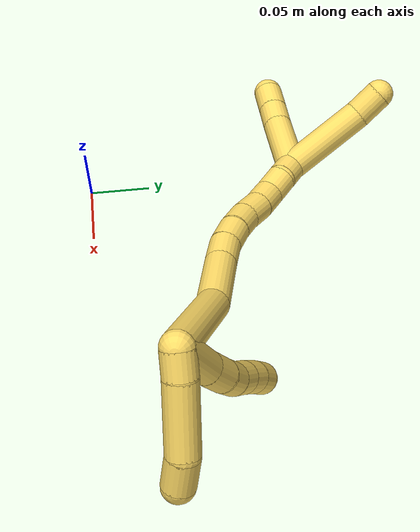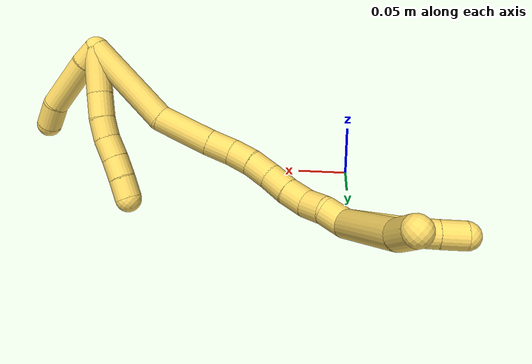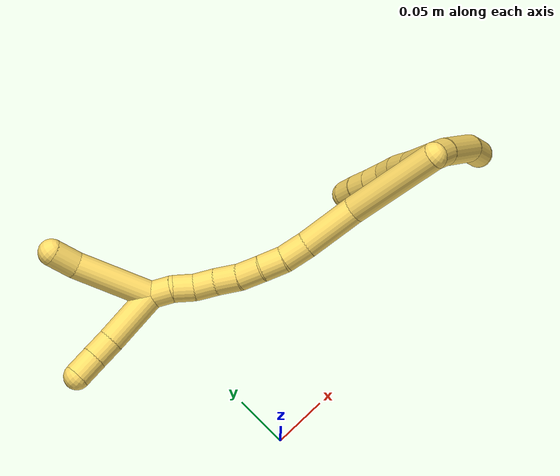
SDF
<sdf version="1.7">
 <world name="default">
  <model name="photoneo_s_sensor">
   <static>1</static>
   <pose>0 0 2 1.57079 1.57079 3.14159</pose>
   <link name="link">
    <inertial><mass>0.1</mass></inertial>
    <sensor name="sensor" type="depth">
     <update_rate>30</update_rate>
     <camera>
      <horizontal_fov>1.22</horizontal_fov>
      <image><width>1920</width><height>1200</height><format>B8G8R8</format></image>
      <clip><near>0.1</near><far>4</far></clip>
      <depth_camera><output>points</output></depth_camera>
     </camera>
     <plugin name="camera_plugin" filename="libgazebo_ros_depth_camera.so">
      <baseline>0.2</baseline>
      <alwaysOn>1</alwaysOn>
      <updateRate>0.0</updateRate>
      <cameraName>camera_ir</cameraName>
      <imageTopicName>/camera/color/image_raw</imageTopicName>
      <cameraInfoTopicName>/camera/color/camera_info</cameraInfoTopicName>
      <depthImageTopicName>/camera/depth/image_raw</depthImageTopicName>
      <depthImageCameraInfoTopicName>/camera/depth/camera_info</depthImageCameraInfoTopicName>
      <pointCloudTopicName>/camera/depth/points</pointCloudTopicName>
      <frameName>fr_optical</frameName>
      <pointCloudCutoff>0.1</pointCloudCutoff>
      <pointCloudCutoffMax>2.0</pointCloudCutoffMax>
      <distortionK1>0</distortionK1>
      <distortionK2>0</distortionK2>
      <distortionK3>0</distortionK3>
      <distortionT1>0</distortionT1>
      <distortionT2>0</distortionT2>
      <CxPrime>0</CxPrime>
      <Cx>0</Cx>
      <Cy>0</Cy>
      <focalLength>0</focalLength>
      <hackBaseline>0</hackBaseline>
     </plugin>
    </sensor>
   </link>
  </model>
  <model name="bin">
   <static>1</static>
   <link name="bottom">
    <collision name="collision-bottom">
     <pose>0 0 -0.01 0 -0 0</pose>
     <geometry><box><size>0.8 0.6 0.02</size></box></geometry>
     <surface>
      <friction><ode><mu>100</mu><mu2>100</mu2></ode></friction>
      <contact><collide_bitmask>65535</collide_bitmask></contact>
     </surface>
    </collision>
   </link>
   <link name="west_wall">
    <collision name="collision-west_wall">
     <pose>-0.41 0 0.1 0 -0 0</pose>
     <geometry><box><size>0.02 0.6 0.2</size></box></geometry>
     <surface>
      <friction><ode><mu>100</mu><mu2>100</mu2></ode></friction>
      <contact><collide_bitmask>65535</collide_bitmask></contact>
     </surface>
    </collision>
   </link>
   <link name="east_wall">
    <collision name="collision-east_wall">
     <pose>0.41 0 0.1 0 -0 0</pose>
     <geometry><box><size>0.02 0.6 0.2</size></box></geometry>
     <surface>
      <friction><ode><mu>100</mu><mu2>100</mu2></ode></friction>
      <contact><collide_bitmask>65535</collide_bitmask></contact>
     </surface>
    </collision>
   </link>
   <link name="south_wall">
    <collision name="collision-south_wall">
     <pose>0 -0.31 0.1 0 -0 0</pose>
     <geometry><box><size>0.8 0.02 0.2</size></box></geometry>
     <surface>
      <friction><ode><mu>100</mu><mu2>100</mu2></ode></friction>
      <contact><collide_bitmask>65535</collide_bitmask></contact>
     </surface>
    </collision>
   </link>
   <link name="north_wall">
    <collision name="collision-north_wall">
     <pose>0 0.31 0.1 0 -0 0</pose>
     <geometry><box><size>0.8 0.02 0.2</size></box></geometry>
     <surface>
      <friction><ode><mu>100</mu><mu2>100</mu2></ode></friction>
      <contact><collide_bitmask>65535</collide_bitmask></contact>
     </surface>
    </collision>
   </link>
  </model>
  <model name="5">
   <static>0</static>
   <link name="5">
    <collision name="collision-cylinder-e_1_2_8">
     <pose>0.008324 0.012152 -0.016418 -2.50442 0.386969 -1.07209</pose>
     <geometry><cylinder><radius>0.0125</radius><length>0.044113</length></cylinder></geometry>
     <surface>
      <friction><ode><mu>1.16</mu><mu2>1.16</mu2><slip1>0</slip1><slip2>0</slip2></ode></friction>
      <contact><ode><kp>1e+06</kp><kd>1</kd><max_vel>0</max_vel><min_depth>0.001</min_depth></ode></contact>
     </surface>
    </collision>
    <visual name="visual-cylinder-e_1_2_8">
     <pose>0.008324 0.012152 -0.016418 -2.50442 0.386969 -1.07209</pose>
     <geometry><cylinder><radius>0.0125</radius><length>0.044113</length></cylinder></geometry>
     <material><ambient>1 0.858824 0.4 1</ambient></material>
    </visual>
    <collision name="collision-cylinder-e_2_8_9">
     <pose>0.020367 0.031328 -0.042176 -2.4968 0.308127 -0.870319</pose>
     <geometry><cylinder><radius>0.0125</radius><length>0.02453</length></cylinder></geometry>
     <surface>
      <friction><ode><mu>1.16</mu><mu2>1.16</mu2><slip1>0</slip1><slip2>0</slip2></ode></friction>
      <contact><ode><kp>1e+06</kp><kd>1</kd><max_vel>0</max_vel><min_depth>0.001</min_depth></ode></contact>
     </surface>
    </collision>
    <visual name="visual-cylinder-e_2_8_9">
     <pose>0.020367 0.031328 -0.042176 -2.4968 0.308127 -0.870319</pose>
     <geometry><cylinder><radius>0.0125</radius><length>0.02453</length></cylinder></geometry>
     <material><ambient>1 0.858824 0.4 1</ambient></material>
    </visual>
    <collision name="collision-cylinder-e_3_9_10">
     <pose>0.026968 0.042924 -0.060002 -2.64739 0.290447 -1.05083</pose>
     <geometry><cylinder><radius>0.0125</radius><length>0.02012</length></cylinder></geometry>
     <surface>
      <friction><ode><mu>1.16</mu><mu2>1.16</mu2><slip1>0</slip1><slip2>0</slip2></ode></friction>
      <contact><ode><kp>1e+06</kp><kd>1</kd><max_vel>0</max_vel><min_depth>0.001</min_depth></ode></contact>
     </surface>
    </collision>
    <visual name="visual-cylinder-e_3_9_10">
     <pose>0.026968 0.042924 -0.060002 -2.64739 0.290447 -1.05083</pose>
     <geometry><cylinder><radius>0.0125</radius><length>0.02012</length></cylinder></geometry>
     <material><ambient>1 0.858824 0.4 1</ambient></material>
    </visual>
    <collision name="collision-cylinder-e_4_10_11">
     <pose>0.031416 0.051435 -0.078052 -2.75099 0.150344 -0.72754</pose>
     <geometry><cylinder><radius>0.0125</radius><length>0.020923</length></cylinder></geometry>
     <surface>
      <friction><ode><mu>1.16</mu><mu2>1.16</mu2><slip1>0</slip1><slip2>0</slip2></ode></friction>
      <contact><ode><kp>1e+06</kp><kd>1</kd><max_vel>0</max_vel><min_depth>0.001</min_depth></ode></contact>
     </surface>
    </collision>
    <visual name="visual-cylinder-e_4_10_11">
     <pose>0.031416 0.051435 -0.078052 -2.75099 0.150344 -0.72754</pose>
     <geometry><cylinder><radius>0.0125</radius><length>0.020923</length></cylinder></geometry>
     <material><ambient>1 0.858824 0.4 1</ambient></material>
    </visual>
    <collision name="collision-cylinder-e_5_11_12">
     <pose>0.034583 0.059659 -0.096661 -2.69905 0.158554 -0.678961</pose>
     <geometry><cylinder><radius>0.0125</radius><length>0.020271</length></cylinder></geometry>
     <surface>
      <friction><ode><mu>1.16</mu><mu2>1.16</mu2><slip1>0</slip1><slip2>0</slip2></ode></friction>
      <contact><ode><kp>1e+06</kp><kd>1</kd><max_vel>0</max_vel><min_depth>0.001</min_depth></ode></contact>
     </surface>
    </collision>
    <visual name="visual-cylinder-e_5_11_12">
     <pose>0.034583 0.059659 -0.096661 -2.69905 0.158554 -0.678961</pose>
     <geometry><cylinder><radius>0.0125</radius><length>0.020271</length></cylinder></geometry>
     <material><ambient>1 0.858824 0.4 1</ambient></material>
    </visual>
    <collision name="collision-cylinder-e_6_12_6">
     <pose>0.038522 0.06817 -0.114486 -2.69312 0.235502 -0.956963</pose>
     <geometry><cylinder><radius>0.0125</radius><length>0.020042</length></cylinder></geometry>
     <surface>
      <friction><ode><mu>1.16</mu><mu2>1.16</mu2><slip1>0</slip1><slip2>0</slip2></ode></friction>
      <contact><ode><kp>1e+06</kp><kd>1</kd><max_vel>0</max_vel><min_depth>0.001</min_depth></ode></contact>
     </surface>
    </collision>
    <visual name="visual-cylinder-e_6_12_6">
     <pose>0.038522 0.06817 -0.114486 -2.69312 0.235502 -0.956963</pose>
     <geometry><cylinder><radius>0.0125</radius><length>0.020042</length></cylinder></geometry>
     <material><ambient>1 0.858824 0.4 1</ambient></material>
    </visual>
    <collision name="collision-cylinder-e_1_2_13">
     <pose>0.008578 0.005416 0.000699 -1.44254 1.00384 -0.89921</pose>
     <geometry><cylinder><radius>0.0125</radius><length>0.020337</length></cylinder></geometry>
     <surface>
      <friction><ode><mu>1.16</mu><mu2>1.16</mu2><slip1>0</slip1><slip2>0</slip2></ode></friction>
      <contact><ode><kp>1e+06</kp><kd>1</kd><max_vel>0</max_vel><min_depth>0.001</min_depth></ode></contact>
     </surface>
    </collision>
    <visual name="visual-cylinder-e_1_2_13">
     <pose>0.008578 0.005416 0.000699 -1.44254 1.00384 -0.89921</pose>
     <geometry><cylinder><radius>0.0125</radius><length>0.020337</length></cylinder></geometry>
     <material><ambient>1 0.858824 0.4 1</ambient></material>
    </visual>
    <collision name="collision-cylinder-e_2_13_14">
     <pose>0.040955 0.02366 0.000995 -1.60215 1.07627 -1.10407</pose>
     <geometry><cylinder><radius>0.0125</radius><length>0.054079</length></cylinder></geometry>
     <surface>
      <friction><ode><mu>1.16</mu><mu2>1.16</mu2><slip1>0</slip1><slip2>0</slip2></ode></friction>
      <contact><ode><kp>1e+06</kp><kd>1</kd><max_vel>0</max_vel><min_depth>0.001</min_depth></ode></contact>
     </surface>
    </collision>
    <visual name="visual-cylinder-e_2_13_14">
     <pose>0.040955 0.02366 0.000995 -1.60215 1.07627 -1.10407</pose>
     <geometry><cylinder><radius>0.0125</radius><length>0.054079</length></cylinder></geometry>
     <material><ambient>1 0.858824 0.4 1</ambient></material>
    </visual>
    <collision name="collision-cylinder-e_3_14_5">
     <pose>0.07666 0.040333 -0.002076 -2.17739 1.19616 -1.83169</pose>
     <geometry><cylinder><radius>0.0125</radius><length>0.025584</length></cylinder></geometry>
     <surface>
      <friction><ode><mu>1.16</mu><mu2>1.16</mu2><slip1>0</slip1><slip2>0</slip2></ode></friction>
      <contact><ode><kp>1e+06</kp><kd>1</kd><max_vel>0</max_vel><min_depth>0.001</min_depth></ode></contact>
     </surface>
    </collision>
    <visual name="visual-cylinder-e_3_14_5">
     <pose>0.07666 0.040333 -0.002076 -2.17739 1.19616 -1.83169</pose>
     <geometry><cylinder><radius>0.0125</radius><length>0.025584</length></cylinder></geometry>
     <material><ambient>1 0.858824 0.4 1</ambient></material>
    </visual>
    <collision name="collision-cylinder-e_1_2_15">
     <pose>-0.002025 0.005646 -0.046641 -3.02112 -0.043067 0.685995</pose>
     <geometry><cylinder><radius>0.0125</radius><length>0.09405</length></cylinder></geometry>
     <surface>
      <friction><ode><mu>1.16</mu><mu2>1.16</mu2><slip1>0</slip1><slip2>0</slip2></ode></friction>
      <contact><ode><kp>1e+06</kp><kd>1</kd><max_vel>0</max_vel><min_depth>0.001</min_depth></ode></contact>
     </surface>
    </collision>
    <visual name="visual-cylinder-e_1_2_15">
     <pose>-0.002025 0.005646 -0.046641 -3.02112 -0.043067 0.685995</pose>
     <geometry><cylinder><radius>0.0125</radius><length>0.09405</length></cylinder></geometry>
     <material><ambient>1 0.858824 0.4 1</ambient></material>
    </visual>
    <collision name="collision-cylinder-e_2_15_16">
     <pose>-0.011348 0.007796 -0.11841 3.00332 -0.280128 -2.22851</pose>
     <geometry><cylinder><radius>0.0125</radius><length>0.052799</length></cylinder></geometry>
     <surface>
      <friction><ode><mu>1.16</mu><mu2>1.16</mu2><slip1>0</slip1><slip2>0</slip2></ode></friction>
      <contact><ode><kp>1e+06</kp><kd>1</kd><max_vel>0</max_vel><min_depth>0.001</min_depth></ode></contact>
     </surface>
    </collision>
    <visual name="visual-cylinder-e_2_15_16">
     <pose>-0.011348 0.007796 -0.11841 3.00332 -0.280128 -2.22851</pose>
     <geometry><cylinder><radius>0.0125</radius><length>0.052799</length></cylinder></geometry>
     <material><ambient>1 0.858824 0.4 1</ambient></material>
    </visual>
    <collision name="collision-cylinder-e_3_16_17">
     <pose>-0.023055 0.002793 -0.154728 3.00782 -0.37226 -2.45807</pose>
     <geometry><cylinder><radius>0.0125</radius><length>0.024239</length></cylinder></geometry>
     <surface>
      <friction><ode><mu>1.16</mu><mu2>1.16</mu2><slip1>0</slip1><slip2>0</slip2></ode></friction>
      <contact><ode><kp>1e+06</kp><kd>1</kd><max_vel>0</max_vel><min_depth>0.001</min_depth></ode></contact>
     </surface>
    </collision>
    <visual name="visual-cylinder-e_3_16_17">
     <pose>-0.023055 0.002793 -0.154728 3.00782 -0.37226 -2.45807</pose>
     <geometry><cylinder><radius>0.0125</radius><length>0.024239</length></cylinder></geometry>
     <material><ambient>1 0.858824 0.4 1</ambient></material>
    </visual>
    <collision name="collision-cylinder-e_4_17_18">
     <pose>-0.032095 0.001839 -0.175725 -3.08543 -0.440534 2.89201</pose>
     <geometry><cylinder><radius>0.0125</radius><length>0.021722</length></cylinder></geometry>
     <surface>
      <friction><ode><mu>1.16</mu><mu2>1.16</mu2><slip1>0</slip1><slip2>0</slip2></ode></friction>
      <contact><ode><kp>1e+06</kp><kd>1</kd><max_vel>0</max_vel><min_depth>0.001</min_depth></ode></contact>
     </surface>
    </collision>
    <visual name="visual-cylinder-e_4_17_18">
     <pose>-0.032095 0.001839 -0.175725 -3.08543 -0.440534 2.89201</pose>
     <geometry><cylinder><radius>0.0125</radius><length>0.021722</length></cylinder></geometry>
     <material><ambient>1 0.858824 0.4 1</ambient></material>
    </visual>
    <collision name="collision-cylinder-e_5_18_19">
     <pose>-0.04042 0.004025 -0.195979 -2.98631 -0.336125 2.28171</pose>
     <geometry><cylinder><radius>0.0125</radius><length>0.0224</length></cylinder></geometry>
     <surface>
      <friction><ode><mu>1.16</mu><mu2>1.16</mu2><slip1>0</slip1><slip2>0</slip2></ode></friction>
      <contact><ode><kp>1e+06</kp><kd>1</kd><max_vel>0</max_vel><min_depth>0.001</min_depth></ode></contact>
     </surface>
    </collision>
    <visual name="visual-cylinder-e_5_18_19">
     <pose>-0.04042 0.004025 -0.195979 -2.98631 -0.336125 2.28171</pose>
     <geometry><cylinder><radius>0.0125</radius><length>0.0224</length></cylinder></geometry>
     <material><ambient>1 0.858824 0.4 1</ambient></material>
    </visual>
    <collision name="collision-cylinder-e_6_19_20">
     <pose>-0.048688 0.008852 -0.216262 -2.82783 -0.416413 1.85623</pose>
     <geometry><cylinder><radius>0.0125</radius><length>0.022615</length></cylinder></geometry>
     <surface>
      <friction><ode><mu>1.16</mu><mu2>1.16</mu2><slip1>0</slip1><slip2>0</slip2></ode></friction>
      <contact><ode><kp>1e+06</kp><kd>1</kd><max_vel>0</max_vel><min_depth>0.001</min_depth></ode></contact>
     </surface>
    </collision>
    <visual name="visual-cylinder-e_6_19_20">
     <pose>-0.048688 0.008852 -0.216262 -2.82783 -0.416413 1.85623</pose>
     <geometry><cylinder><radius>0.0125</radius><length>0.022615</length></cylinder></geometry>
     <material><ambient>1 0.858824 0.4 1</ambient></material>
    </visual>
    <collision name="collision-cylinder-e_7_20_21">
     <pose>-0.058148 0.013951 -0.235258 -2.9363 -0.481258 2.34671</pose>
     <geometry><cylinder><radius>0.0125</radius><length>0.021111</length></cylinder></geometry>
     <surface>
      <friction><ode><mu>1.16</mu><mu2>1.16</mu2><slip1>0</slip1><slip2>0</slip2></ode></friction>
      <contact><ode><kp>1e+06</kp><kd>1</kd><max_vel>0</max_vel><min_depth>0.001</min_depth></ode></contact>
     </surface>
    </collision>
    <visual name="visual-cylinder-e_7_20_21">
     <pose>-0.058148 0.013951 -0.235258 -2.9363 -0.481258 2.34671</pose>
     <geometry><cylinder><radius>0.0125</radius><length>0.021111</length></cylinder></geometry>
     <material><ambient>1 0.858824 0.4 1</ambient></material>
    </visual>
    <collision name="collision-cylinder-e_8_21_22">
     <pose>-0.070095 0.017803 -0.251273 -2.86523 -0.780881 2.48989</pose>
     <geometry><cylinder><radius>0.0125</radius><length>0.020063</length></cylinder></geometry>
     <surface>
      <friction><ode><mu>1.16</mu><mu2>1.16</mu2><slip1>0</slip1><slip2>0</slip2></ode></friction>
      <contact><ode><kp>1e+06</kp><kd>1</kd><max_vel>0</max_vel><min_depth>0.001</min_depth></ode></contact>
     </surface>
    </collision>
    <visual name="visual-cylinder-e_8_21_22">
     <pose>-0.070095 0.017803 -0.251273 -2.86523 -0.780881 2.48989</pose>
     <geometry><cylinder><radius>0.0125</radius><length>0.020063</length></cylinder></geometry>
     <material><ambient>1 0.858824 0.4 1</ambient></material>
    </visual>
    <collision name="collision-cylinder-e_9_22_1">
     <pose>-0.081844 0.021504 -0.267358 -2.95353 -0.462801 2.38014</pose>
     <geometry><cylinder><radius>0.0125</radius><length>0.021001</length></cylinder></geometry>
     <surface>
      <friction><ode><mu>1.16</mu><mu2>1.16</mu2><slip1>0</slip1><slip2>0</slip2></ode></friction>
      <contact><ode><kp>1e+06</kp><kd>1</kd><max_vel>0</max_vel><min_depth>0.001</min_depth></ode></contact>
     </surface>
    </collision>
    <visual name="visual-cylinder-e_9_22_1">
     <pose>-0.081844 0.021504 -0.267358 -2.95353 -0.462801 2.38014</pose>
     <geometry><cylinder><radius>0.0125</radius><length>0.021001</length></cylinder></geometry>
     <material><ambient>1 0.858824 0.4 1</ambient></material>
    </visual>
    <collision name="collision-cylinder-e_1_1_23">
     <pose>-0.09598 0.010354 -0.299174 2.62246 -0.348395 -1.17048</pose>
     <geometry><cylinder><radius>0.0125</radius><length>0.055353</length></cylinder></geometry>
     <surface>
      <friction><ode><mu>1.16</mu><mu2>1.16</mu2><slip1>0</slip1><slip2>0</slip2></ode></friction>
      <contact><ode><kp>1e+06</kp><kd>1</kd><max_vel>0</max_vel><min_depth>0.001</min_depth></ode></contact>
     </surface>
    </collision>
    <visual name="visual-cylinder-e_1_1_23">
     <pose>-0.09598 0.010354 -0.299174 2.62246 -0.348395 -1.17048</pose>
     <geometry><cylinder><radius>0.0125</radius><length>0.055353</length></cylinder></geometry>
     <material><ambient>1 0.858824 0.4 1</ambient></material>
    </visual>
    <collision name="collision-cylinder-e_2_23_24">
     <pose>-0.109751 -0.007741 -0.330148 2.58756 -0.413006 -1.26999</pose>
     <geometry><cylinder><radius>0.0125</radius><length>0.021535</length></cylinder></geometry>
     <surface>
      <friction><ode><mu>1.16</mu><mu2>1.16</mu2><slip1>0</slip1><slip2>0</slip2></ode></friction>
      <contact><ode><kp>1e+06</kp><kd>1</kd><max_vel>0</max_vel><min_depth>0.001</min_depth></ode></contact>
     </surface>
    </collision>
    <visual name="visual-cylinder-e_2_23_24">
     <pose>-0.109751 -0.007741 -0.330148 2.58756 -0.413006 -1.26999</pose>
     <geometry><cylinder><radius>0.0125</radius><length>0.021535</length></cylinder></geometry>
     <material><ambient>1 0.858824 0.4 1</ambient></material>
    </visual>
    <collision name="collision-cylinder-e_3_24_4">
     <pose>-0.118774 -0.018666 -0.347396 2.56706 -0.418977 -1.24756</pose>
     <geometry><cylinder><radius>0.0125</radius><length>0.023112</length></cylinder></geometry>
     <surface>
      <friction><ode><mu>1.16</mu><mu2>1.16</mu2><slip1>0</slip1><slip2>0</slip2></ode></friction>
      <contact><ode><kp>1e+06</kp><kd>1</kd><max_vel>0</max_vel><min_depth>0.001</min_depth></ode></contact>
     </surface>
    </collision>
    <visual name="visual-cylinder-e_3_24_4">
     <pose>-0.118774 -0.018666 -0.347396 2.56706 -0.418977 -1.24756</pose>
     <geometry><cylinder><radius>0.0125</radius><length>0.023112</length></cylinder></geometry>
     <material><ambient>1 0.858824 0.4 1</ambient></material>
    </visual>
    <collision name="collision-cylinder-e_1_1_25">
     <pose>-0.118589 0.038362 -0.287835 -2.21092 -1.03972 1.70139</pose>
     <geometry><cylinder><radius>0.0125</radius><length>0.074356</length></cylinder></geometry>
     <surface>
      <friction><ode><mu>1.16</mu><mu2>1.16</mu2><slip1>0</slip1><slip2>0</slip2></ode></friction>
      <contact><ode><kp>1e+06</kp><kd>1</kd><max_vel>0</max_vel><min_depth>0.001</min_depth></ode></contact>
     </surface>
    </collision>
    <visual name="visual-cylinder-e_1_1_25">
     <pose>-0.118589 0.038362 -0.287835 -2.21092 -1.03972 1.70139</pose>
     <geometry><cylinder><radius>0.0125</radius><length>0.074356</length></cylinder></geometry>
     <material><ambient>1 0.858824 0.4 1</ambient></material>
    </visual>
    <collision name="collision-cylinder-e_2_25_3">
     <pose>-0.162774 0.057466 -0.300223 -1.84862 -1.24022 1.51553</pose>
     <geometry><cylinder><radius>0.0125</radius><length>0.025644</length></cylinder></geometry>
     <surface>
      <friction><ode><mu>1.16</mu><mu2>1.16</mu2><slip1>0</slip1><slip2>0</slip2></ode></friction>
      <contact><ode><kp>1e+06</kp><kd>1</kd><max_vel>0</max_vel><min_depth>0.001</min_depth></ode></contact>
     </surface>
    </collision>
    <visual name="visual-cylinder-e_2_25_3">
     <pose>-0.162774 0.057466 -0.300223 -1.84862 -1.24022 1.51553</pose>
     <geometry><cylinder><radius>0.0125</radius><length>0.025644</length></cylinder></geometry>
     <material><ambient>1 0.858824 0.4 1</ambient></material>
    </visual>
    <collision name="collision-sphere-3">
     <pose>-0.174902 0.061468 -0.301364 0 -0 0</pose>
     <geometry><sphere><radius>0.0125</radius></sphere></geometry>
     <surface>
      <friction><ode><mu>1.16</mu><mu2>1.16</mu2><slip1>0</slip1><slip2>0</slip2></ode></friction>
      <contact><ode><kp>1e+06</kp><kd>1</kd><max_vel>0</max_vel><min_depth>0.001</min_depth></ode></contact>
     </surface>
    </collision>
    <visual name="visual-sphere-3">
     <pose>-0.174902 0.061468 -0.301364 0 -0 0</pose>
     <geometry><sphere><radius>0.0125</radius></sphere></geometry>
     <material><ambient>1 0.858824 0.4 1</ambient></material>
    </visual>
    <collision name="collision-sphere-25">
     <pose>-0.150647 0.053463 -0.299081 0 -0 0</pose>
     <geometry><sphere><radius>0.0125</radius></sphere></geometry>
     <surface>
      <friction><ode><mu>1.16</mu><mu2>1.16</mu2><slip1>0</slip1><slip2>0</slip2></ode></friction>
      <contact><ode><kp>1e+06</kp><kd>1</kd><max_vel>0</max_vel><min_depth>0.001</min_depth></ode></contact>
     </surface>
    </collision>
    <visual name="visual-sphere-25">
     <pose>-0.150647 0.053463 -0.299081 0 -0 0</pose>
     <geometry><sphere><radius>0.0125</radius></sphere></geometry>
     <material><ambient>1 0.858824 0.4 1</ambient></material>
    </visual>
    <collision name="collision-sphere-4">
     <pose>-0.123475 -0.024403 -0.356258 0 -0 0</pose>
     <geometry><sphere><radius>0.0125</radius></sphere></geometry>
     <surface>
      <friction><ode><mu>1.16</mu><mu2>1.16</mu2><slip1>0</slip1><slip2>0</slip2></ode></friction>
      <contact><ode><kp>1e+06</kp><kd>1</kd><max_vel>0</max_vel><min_depth>0.001</min_depth></ode></contact>
     </surface>
    </collision>
    <visual name="visual-sphere-4">
     <pose>-0.123475 -0.024403 -0.356258 0 -0 0</pose>
     <geometry><sphere><radius>0.0125</radius></sphere></geometry>
     <material><ambient>1 0.858824 0.4 1</ambient></material>
    </visual>
    <collision name="collision-sphere-24">
     <pose>-0.114072 -0.012929 -0.338534 0 -0 0</pose>
     <geometry><sphere><radius>0.0125</radius></sphere></geometry>
     <surface>
      <friction><ode><mu>1.16</mu><mu2>1.16</mu2><slip1>0</slip1><slip2>0</slip2></ode></friction>
      <contact><ode><kp>1e+06</kp><kd>1</kd><max_vel>0</max_vel><min_depth>0.001</min_depth></ode></contact>
     </surface>
    </collision>
    <visual name="visual-sphere-24">
     <pose>-0.114072 -0.012929 -0.338534 0 -0 0</pose>
     <geometry><sphere><radius>0.0125</radius></sphere></geometry>
     <material><ambient>1 0.858824 0.4 1</ambient></material>
    </visual>
    <collision name="collision-sphere-23">
     <pose>-0.105429 -0.002552 -0.321761 0 -0 0</pose>
     <geometry><sphere><radius>0.0125</radius></sphere></geometry>
     <surface>
      <friction><ode><mu>1.16</mu><mu2>1.16</mu2><slip1>0</slip1><slip2>0</slip2></ode></friction>
      <contact><ode><kp>1e+06</kp><kd>1</kd><max_vel>0</max_vel><min_depth>0.001</min_depth></ode></contact>
     </surface>
    </collision>
    <visual name="visual-sphere-23">
     <pose>-0.105429 -0.002552 -0.321761 0 -0 0</pose>
     <geometry><sphere><radius>0.0125</radius></sphere></geometry>
     <material><ambient>1 0.858824 0.4 1</ambient></material>
    </visual>
    <collision name="collision-sphere-1">
     <pose>-0.086532 0.02326 -0.276588 0 -0 0</pose>
     <geometry><sphere><radius>0.0125</radius></sphere></geometry>
     <surface>
      <friction><ode><mu>1.16</mu><mu2>1.16</mu2><slip1>0</slip1><slip2>0</slip2></ode></friction>
      <contact><ode><kp>1e+06</kp><kd>1</kd><max_vel>0</max_vel><min_depth>0.001</min_depth></ode></contact>
     </surface>
    </collision>
    <visual name="visual-sphere-1">
     <pose>-0.086532 0.02326 -0.276588 0 -0 0</pose>
     <geometry><sphere><radius>0.0125</radius></sphere></geometry>
     <material><ambient>1 0.858824 0.4 1</ambient></material>
    </visual>
    <collision name="collision-sphere-22">
     <pose>-0.077156 0.019747 -0.258128 0 -0 0</pose>
     <geometry><sphere><radius>0.0125</radius></sphere></geometry>
     <surface>
      <friction><ode><mu>1.16</mu><mu2>1.16</mu2><slip1>0</slip1><slip2>0</slip2></ode></friction>
      <contact><ode><kp>1e+06</kp><kd>1</kd><max_vel>0</max_vel><min_depth>0.001</min_depth></ode></contact>
     </surface>
    </collision>
    <visual name="visual-sphere-22">
     <pose>-0.077156 0.019747 -0.258128 0 -0 0</pose>
     <geometry><sphere><radius>0.0125</radius></sphere></geometry>
     <material><ambient>1 0.858824 0.4 1</ambient></material>
    </visual>
    <collision name="collision-sphere-21">
     <pose>-0.063034 0.015859 -0.244418 0 -0 0</pose>
     <geometry><sphere><radius>0.0125</radius></sphere></geometry>
     <surface>
      <friction><ode><mu>1.16</mu><mu2>1.16</mu2><slip1>0</slip1><slip2>0</slip2></ode></friction>
      <contact><ode><kp>1e+06</kp><kd>1</kd><max_vel>0</max_vel><min_depth>0.001</min_depth></ode></contact>
     </surface>
    </collision>
    <visual name="visual-sphere-21">
     <pose>-0.063034 0.015859 -0.244418 0 -0 0</pose>
     <geometry><sphere><radius>0.0125</radius></sphere></geometry>
     <material><ambient>1 0.858824 0.4 1</ambient></material>
    </visual>
    <collision name="collision-sphere-12">
     <pose>0.036183 0.063945 -0.105706 0 -0 0</pose>
     <geometry><sphere><radius>0.0125</radius></sphere></geometry>
     <surface>
      <friction><ode><mu>1.16</mu><mu2>1.16</mu2><slip1>0</slip1><slip2>0</slip2></ode></friction>
      <contact><ode><kp>1e+06</kp><kd>1</kd><max_vel>0</max_vel><min_depth>0.001</min_depth></ode></contact>
     </surface>
    </collision>
    <visual name="visual-sphere-12">
     <pose>0.036183 0.063945 -0.105706 0 -0 0</pose>
     <geometry><sphere><radius>0.0125</radius></sphere></geometry>
     <material><ambient>1 0.858824 0.4 1</ambient></material>
    </visual>
    <collision name="collision-sphere-11">
     <pose>0.032983 0.055373 -0.087617 0 -0 0</pose>
     <geometry><sphere><radius>0.0125</radius></sphere></geometry>
     <surface>
      <friction><ode><mu>1.16</mu><mu2>1.16</mu2><slip1>0</slip1><slip2>0</slip2></ode></friction>
      <contact><ode><kp>1e+06</kp><kd>1</kd><max_vel>0</max_vel><min_depth>0.001</min_depth></ode></contact>
     </surface>
    </collision>
    <visual name="visual-sphere-11">
     <pose>0.032983 0.055373 -0.087617 0 -0 0</pose>
     <geometry><sphere><radius>0.0125</radius></sphere></geometry>
     <material><ambient>1 0.858824 0.4 1</ambient></material>
    </visual>
    <collision name="collision-sphere-10">
     <pose>0.029849 0.047496 -0.068488 0 -0 0</pose>
     <geometry><sphere><radius>0.0125</radius></sphere></geometry>
     <surface>
      <friction><ode><mu>1.16</mu><mu2>1.16</mu2><slip1>0</slip1><slip2>0</slip2></ode></friction>
      <contact><ode><kp>1e+06</kp><kd>1</kd><max_vel>0</max_vel><min_depth>0.001</min_depth></ode></contact>
     </surface>
    </collision>
    <visual name="visual-sphere-10">
     <pose>0.029849 0.047496 -0.068488 0 -0 0</pose>
     <geometry><sphere><radius>0.0125</radius></sphere></geometry>
     <material><ambient>1 0.858824 0.4 1</ambient></material>
    </visual>
    <collision name="collision-sphere-9">
     <pose>0.024087 0.038352 -0.051517 0 -0 0</pose>
     <geometry><sphere><radius>0.0125</radius></sphere></geometry>
     <surface>
      <friction><ode><mu>1.16</mu><mu2>1.16</mu2><slip1>0</slip1><slip2>0</slip2></ode></friction>
      <contact><ode><kp>1e+06</kp><kd>1</kd><max_vel>0</max_vel><min_depth>0.001</min_depth></ode></contact>
     </surface>
    </collision>
    <visual name="visual-sphere-9">
     <pose>0.024087 0.038352 -0.051517 0 -0 0</pose>
     <geometry><sphere><radius>0.0125</radius></sphere></geometry>
     <material><ambient>1 0.858824 0.4 1</ambient></material>
    </visual>
    <collision name="collision-sphere-2">
     <geometry><sphere><radius>0.0125</radius></sphere></geometry>
     <surface>
      <friction><ode><mu>1.16</mu><mu2>1.16</mu2><slip1>0</slip1><slip2>0</slip2></ode></friction>
      <contact><ode><kp>1e+06</kp><kd>1</kd><max_vel>0</max_vel><min_depth>0.001</min_depth></ode></contact>
     </surface>
    </collision>
    <visual name="visual-sphere-2">
     <geometry><sphere><radius>0.0125</radius></sphere></geometry>
     <material><ambient>1 0.858824 0.4 1</ambient></material>
    </visual>
    <collision name="collision-sphere-19">
     <pose>-0.044114 0.005661 -0.206426 0 -0 0</pose>
     <geometry><sphere><radius>0.0125</radius></sphere></geometry>
     <surface>
      <friction><ode><mu>1.16</mu><mu2>1.16</mu2><slip1>0</slip1><slip2>0</slip2></ode></friction>
      <contact><ode><kp>1e+06</kp><kd>1</kd><max_vel>0</max_vel><min_depth>0.001</min_depth></ode></contact>
     </surface>
    </collision>
    <visual name="visual-sphere-19">
     <pose>-0.044114 0.005661 -0.206426 0 -0 0</pose>
     <geometry><sphere><radius>0.0125</radius></sphere></geometry>
     <material><ambient>1 0.858824 0.4 1</ambient></material>
    </visual>
    <collision name="collision-sphere-8">
     <pose>0.016648 0.024304 -0.032836 0 -0 0</pose>
     <geometry><sphere><radius>0.0125</radius></sphere></geometry>
     <surface>
      <friction><ode><mu>1.16</mu><mu2>1.16</mu2><slip1>0</slip1><slip2>0</slip2></ode></friction>
      <contact><ode><kp>1e+06</kp><kd>1</kd><max_vel>0</max_vel><min_depth>0.001</min_depth></ode></contact>
     </surface>
    </collision>
    <visual name="visual-sphere-8">
     <pose>0.016648 0.024304 -0.032836 0 -0 0</pose>
     <geometry><sphere><radius>0.0125</radius></sphere></geometry>
     <material><ambient>1 0.858824 0.4 1</ambient></material>
    </visual>
    <collision name="collision-sphere-6">
     <pose>0.04086 0.072395 -0.123267 0 -0 0</pose>
     <geometry><sphere><radius>0.0125</radius></sphere></geometry>
     <surface>
      <friction><ode><mu>1.16</mu><mu2>1.16</mu2><slip1>0</slip1><slip2>0</slip2></ode></friction>
      <contact><ode><kp>1e+06</kp><kd>1</kd><max_vel>0</max_vel><min_depth>0.001</min_depth></ode></contact>
     </surface>
    </collision>
    <visual name="visual-sphere-6">
     <pose>0.04086 0.072395 -0.123267 0 -0 0</pose>
     <geometry><sphere><radius>0.0125</radius></sphere></geometry>
     <material><ambient>1 0.858824 0.4 1</ambient></material>
    </visual>
    <collision name="collision-sphere-13">
     <pose>0.017155 0.010833 0.001397 0 -0 0</pose>
     <geometry><sphere><radius>0.0125</radius></sphere></geometry>
     <surface>
      <friction><ode><mu>1.16</mu><mu2>1.16</mu2><slip1>0</slip1><slip2>0</slip2></ode></friction>
      <contact><ode><kp>1e+06</kp><kd>1</kd><max_vel>0</max_vel><min_depth>0.001</min_depth></ode></contact>
     </surface>
    </collision>
    <visual name="visual-sphere-13">
     <pose>0.017155 0.010833 0.001397 0 -0 0</pose>
     <geometry><sphere><radius>0.0125</radius></sphere></geometry>
     <material><ambient>1 0.858824 0.4 1</ambient></material>
    </visual>
    <collision name="collision-sphere-14">
     <pose>0.064755 0.036487 0.000592 0 -0 0</pose>
     <geometry><sphere><radius>0.0125</radius></sphere></geometry>
     <surface>
      <friction><ode><mu>1.16</mu><mu2>1.16</mu2><slip1>0</slip1><slip2>0</slip2></ode></friction>
      <contact><ode><kp>1e+06</kp><kd>1</kd><max_vel>0</max_vel><min_depth>0.001</min_depth></ode></contact>
     </surface>
    </collision>
    <visual name="visual-sphere-14">
     <pose>0.064755 0.036487 0.000592 0 -0 0</pose>
     <geometry><sphere><radius>0.0125</radius></sphere></geometry>
     <material><ambient>1 0.858824 0.4 1</ambient></material>
    </visual>
    <collision name="collision-sphere-5">
     <pose>0.088565 0.044179 -0.004744 0 -0 0</pose>
     <geometry><sphere><radius>0.0125</radius></sphere></geometry>
     <surface>
      <friction><ode><mu>1.16</mu><mu2>1.16</mu2><slip1>0</slip1><slip2>0</slip2></ode></friction>
      <contact><ode><kp>1e+06</kp><kd>1</kd><max_vel>0</max_vel><min_depth>0.001</min_depth></ode></contact>
     </surface>
    </collision>
    <visual name="visual-sphere-5">
     <pose>0.088565 0.044179 -0.004744 0 -0 0</pose>
     <geometry><sphere><radius>0.0125</radius></sphere></geometry>
     <material><ambient>1 0.858824 0.4 1</ambient></material>
    </visual>
    <collision name="collision-sphere-15">
     <pose>-0.004049 0.011292 -0.093282 0 -0 0</pose>
     <geometry><sphere><radius>0.0125</radius></sphere></geometry>
     <surface>
      <friction><ode><mu>1.16</mu><mu2>1.16</mu2><slip1>0</slip1><slip2>0</slip2></ode></friction>
      <contact><ode><kp>1e+06</kp><kd>1</kd><max_vel>0</max_vel><min_depth>0.001</min_depth></ode></contact>
     </surface>
    </collision>
    <visual name="visual-sphere-15">
     <pose>-0.004049 0.011292 -0.093282 0 -0 0</pose>
     <geometry><sphere><radius>0.0125</radius></sphere></geometry>
     <material><ambient>1 0.858824 0.4 1</ambient></material>
    </visual>
    <collision name="collision-sphere-16">
     <pose>-0.018647 0.004299 -0.143539 0 -0 0</pose>
     <geometry><sphere><radius>0.0125</radius></sphere></geometry>
     <surface>
      <friction><ode><mu>1.16</mu><mu2>1.16</mu2><slip1>0</slip1><slip2>0</slip2></ode></friction>
      <contact><ode><kp>1e+06</kp><kd>1</kd><max_vel>0</max_vel><min_depth>0.001</min_depth></ode></contact>
     </surface>
    </collision>
    <visual name="visual-sphere-16">
     <pose>-0.018647 0.004299 -0.143539 0 -0 0</pose>
     <geometry><sphere><radius>0.0125</radius></sphere></geometry>
     <material><ambient>1 0.858824 0.4 1</ambient></material>
    </visual>
    <collision name="collision-sphere-17">
     <pose>-0.027464 0.001287 -0.165916 0 -0 0</pose>
     <geometry><sphere><radius>0.0125</radius></sphere></geometry>
     <surface>
      <friction><ode><mu>1.16</mu><mu2>1.16</mu2><slip1>0</slip1><slip2>0</slip2></ode></friction>
      <contact><ode><kp>1e+06</kp><kd>1</kd><max_vel>0</max_vel><min_depth>0.001</min_depth></ode></contact>
     </surface>
    </collision>
    <visual name="visual-sphere-17">
     <pose>-0.027464 0.001287 -0.165916 0 -0 0</pose>
     <geometry><sphere><radius>0.0125</radius></sphere></geometry>
     <material><ambient>1 0.858824 0.4 1</ambient></material>
    </visual>
    <collision name="collision-sphere-18">
     <pose>-0.036726 0.00239 -0.185533 0 -0 0</pose>
     <geometry><sphere><radius>0.0125</radius></sphere></geometry>
     <surface>
      <friction><ode><mu>1.16</mu><mu2>1.16</mu2><slip1>0</slip1><slip2>0</slip2></ode></friction>
      <contact><ode><kp>1e+06</kp><kd>1</kd><max_vel>0</max_vel><min_depth>0.001</min_depth></ode></contact>
     </surface>
    </collision>
    <visual name="visual-sphere-18">
     <pose>-0.036726 0.00239 -0.185533 0 -0 0</pose>
     <geometry><sphere><radius>0.0125</radius></sphere></geometry>
     <material><ambient>1 0.858824 0.4 1</ambient></material>
    </visual>
    <collision name="collision-sphere-20">
     <pose>-0.053262 0.012044 -0.226098 0 -0 0</pose>
     <geometry><sphere><radius>0.0125</radius></sphere></geometry>
     <surface>
      <friction><ode><mu>1.16</mu><mu2>1.16</mu2><slip1>0</slip1><slip2>0</slip2></ode></friction>
      <contact><ode><kp>1e+06</kp><kd>1</kd><max_vel>0</max_vel><min_depth>0.001</min_depth></ode></contact>
     </surface>
    </collision>
    <visual name="visual-sphere-20">
     <pose>-0.053262 0.012044 -0.226098 0 -0 0</pose>
     <geometry><sphere><radius>0.0125</radius></sphere></geometry>
     <material><ambient>1 0.858824 0.4 1</ambient></material>
    </visual>
    <inertial>
     <pose>-0.031904 0.019982 -0.15033 0 -0 0</pose>
     <mass>0.75</mass>
     <inertia><ixx>7.2e-05</ixx><ixy>0</ixy><ixz>0</ixz><iyy>3e-05</iyy><iyz>0</iyz><izz>-4e-05</izz></inertia>
    </inertial>
   </link>
   <pose>0.247699 0.063432 0.140723 -0.462896 0.79246 -0.833144</pose>
  </model>
 </world>
</sdf>
